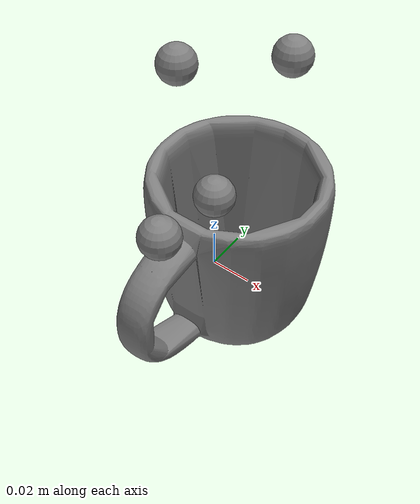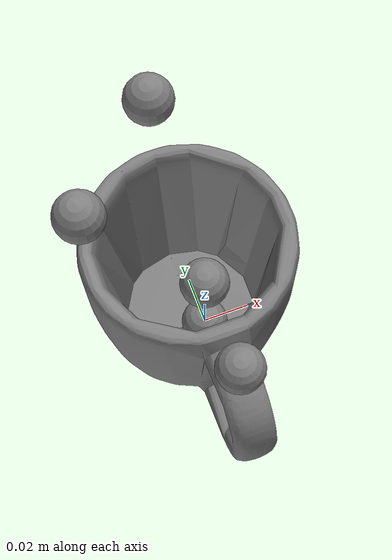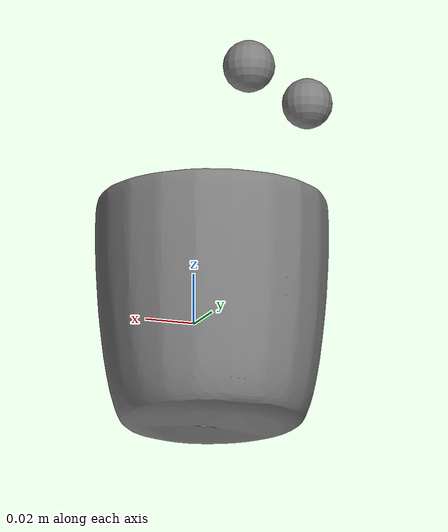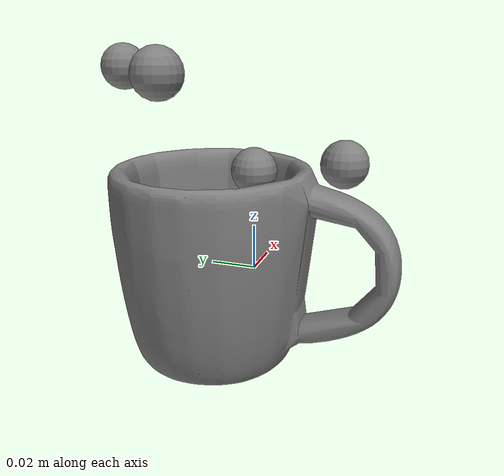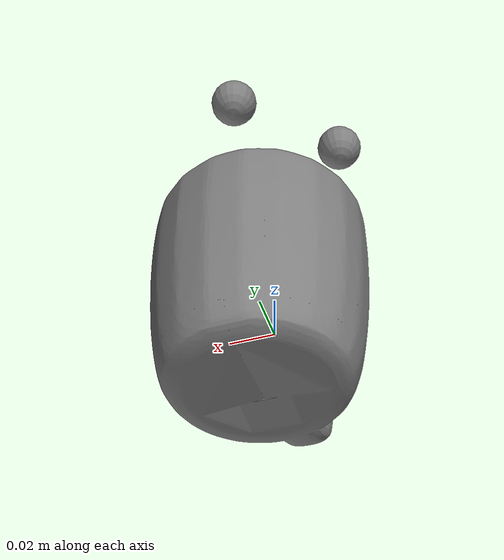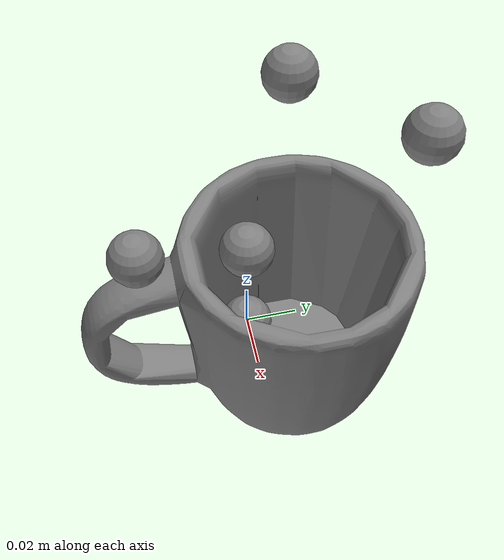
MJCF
<mujoco model="039_mug_4">
  <asset>
    <mesh name="039_mug_collision_4" file="039_mug_4.stl" scale="0.067 0.067 0.067"/>
  </asset>

  <worldbody>
<body name="039_mug_4">
  <geom name="039_mug_collision_4" type="mesh" mesh="039_mug_collision_4" />
  <site name="039_mug_4_keypoints_0" pos="0.0 0.060308107 0.08722763500000001" size="0.01"/>
  <site name="039_mug_4_keypoints_1" pos="-0.038836550000000004 0.023469296 0.087216446" size="0.01"/>
  <site name="039_mug_4_keypoints_2" pos="0.0 -0.038833066 0.050358808" size="0.01"/>
  <site name="039_mug_4_keypoints_3" pos="0.0 0.0 0.0" size="0.01"/>
  <site name="039_mug_4_keypoints_4" pos="0.0 1.3601e-05 0.045012141" size="0.01"/>
</body>
  </worldbody>
</mujoco>
